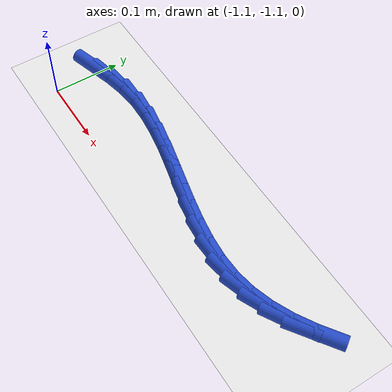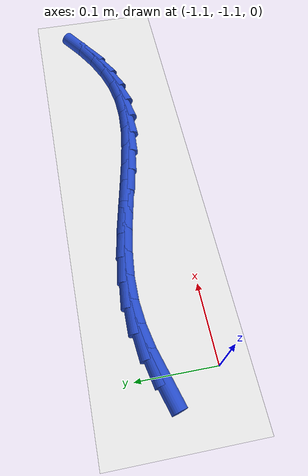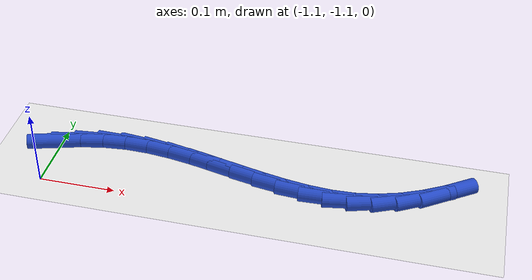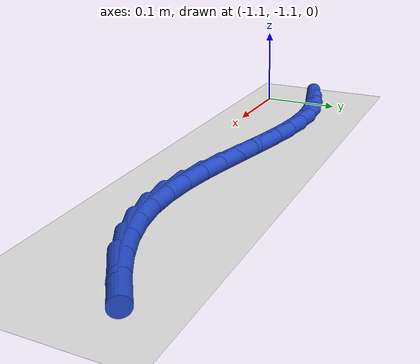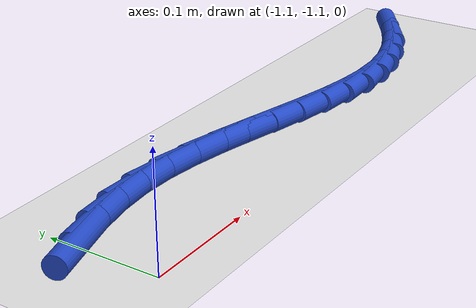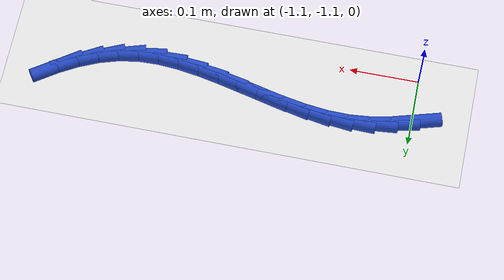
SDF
<sdf version="1.6">
 <world name="default">
  <model name="ground_plane">
   <static>1</static>
   <link name="link">
    <collision name="collision">
     <geometry><plane><normal>0 0 1</normal><size>100 100</size></plane></geometry>
     <surface><friction><ode><mu>100</mu><mu2>50</mu2></ode></friction></surface>
    </collision>
    <visual name="visual">
     <cast_shadows>0</cast_shadows>
     <geometry><plane><normal>0 0 1</normal><size>100 100</size></plane></geometry>
     <material>
      <script><uri>file://media/materials/scripts/gazebo.material</uri><name>Gazebo/WhiteGlow</name></script>
     </material>
    </visual>
   </link>
  </model>
  <model name="line">
   <link name="link_165">
    <pose>-1.1023682131840757 -1.031551570370461 0.01 0 1.57 0.2851211983102639</pose>
    <collision name="collision">
     <geometry><cylinder><radius>0.01</radius><length>0.08</length></cylinder></geometry>
    </collision>
    <visual name="visual">
     <material>
      <script><name>Gazebo/Blue</name><uri>file://media/materials/scripts/gazebo.material</uri></script>
     </material>
     <geometry><cylinder><radius>0.01</radius><length>0.08</length></cylinder></geometry>
    </visual>
   </link>
   <link name="link_166">
    <pose>-1.0724338450637536 -1.0227775912795036 0.01 0 1.57 0.20189719620483382</pose>
    <collision name="collision">
     <geometry><cylinder><radius>0.01</radius><length>0.08</length></cylinder></geometry>
    </collision>
    <visual name="visual">
     <material>
      <script><name>Gazebo/Blue</name><uri>file://media/materials/scripts/gazebo.material</uri></script>
     </material>
     <geometry><cylinder><radius>0.01</radius><length>0.08</length></cylinder></geometry>
    </visual>
   </link>
   <link name="link_167">
    <pose>-1.0421703543765288 -1.0165830798666606 0.01 0 1.57 0.09502463437327756</pose>
    <collision name="collision">
     <geometry><cylinder><radius>0.01</radius><length>0.08</length></cylinder></geometry>
    </collision>
    <visual name="visual">
     <material>
      <script><name>Gazebo/Blue</name><uri>file://media/materials/scripts/gazebo.material</uri></script>
     </material>
     <geometry><cylinder><radius>0.01</radius><length>0.08</length></cylinder></geometry>
    </visual>
   </link>
   <link name="link_168">
    <pose>-1.011461776324725 -1.0136561935406478 0.01 0 1.57 -0.020391022047481184</pose>
    <collision name="collision">
     <geometry><cylinder><radius>0.01</radius><length>0.08</length></cylinder></geometry>
    </collision>
    <visual name="visual">
     <material>
      <script><name>Gazebo/Blue</name><uri>file://media/materials/scripts/gazebo.material</uri></script>
     </material>
     <geometry><cylinder><radius>0.01</radius><length>0.08</length></cylinder></geometry>
    </visual>
   </link>
   <link name="link_169">
    <pose>-0.9802592462047243 -1.0142925332180668 0.01 0 1.57 -0.11223058271521404</pose>
    <collision name="collision">
     <geometry><cylinder><radius>0.01</radius><length>0.08</length></cylinder></geometry>
    </collision>
    <visual name="visual">
     <material>
      <script><name>Gazebo/Blue</name><uri>file://media/materials/scripts/gazebo.material</uri></script>
     </material>
     <geometry><cylinder><radius>0.01</radius><length>0.08</length></cylinder></geometry>
    </visual>
   </link>
   <link name="link_170">
    <pose>-0.9486737801247497 -1.0178523471676635 0.01 0 1.57 -0.17739528652523226</pose>
    <collision name="collision">
     <geometry><cylinder><radius>0.01</radius><length>0.08</length></cylinder></geometry>
    </collision>
    <visual name="visual">
     <material>
      <script><name>Gazebo/Blue</name><uri>file://media/materials/scripts/gazebo.material</uri></script>
     </material>
     <geometry><cylinder><radius>0.01</radius><length>0.08</length></cylinder></geometry>
    </visual>
   </link>
   <link name="link_171">
    <pose>-0.9168396967595736 -1.0235595563711455 0.01 0 1.57 -0.21803904960027637</pose>
    <collision name="collision">
     <geometry><cylinder><radius>0.01</radius><length>0.08</length></cylinder></geometry>
    </collision>
    <visual name="visual">
     <material>
      <script><name>Gazebo/Blue</name><uri>file://media/materials/scripts/gazebo.material</uri></script>
     </material>
     <geometry><cylinder><radius>0.01</radius><length>0.08</length></cylinder></geometry>
    </visual>
   </link>
   <link name="link_172">
    <pose>-0.8848913147839697 -1.0306380818102205 0.01 0 1.57 -0.23586940406162912</pose>
    <collision name="collision">
     <geometry><cylinder><radius>0.01</radius><length>0.08</length></cylinder></geometry>
    </collision>
    <visual name="visual">
     <material>
      <script><name>Gazebo/Blue</name><uri>file://media/materials/scripts/gazebo.material</uri></script>
     </material>
     <geometry><cylinder><radius>0.01</radius><length>0.08</length></cylinder></geometry>
    </visual>
   </link>
   <link name="link_173">
    <pose>-0.8529629528727102 -1.0383118444665957 0.01 0 1.57 -0.23158803058866578</pose>
    <collision name="collision">
     <geometry><cylinder><radius>0.01</radius><length>0.08</length></cylinder></geometry>
    </collision>
    <visual name="visual">
     <material>
      <script><name>Gazebo/Blue</name><uri>file://media/materials/scripts/gazebo.material</uri></script>
     </material>
     <geometry><cylinder><radius>0.01</radius><length>0.08</length></cylinder></geometry>
    </visual>
   </link>
   <link name="link_174">
    <pose>-0.8211889297005709 -1.0458047653219797 0.01 0 1.57 -0.20468143855820783</pose>
    <collision name="collision">
     <geometry><cylinder><radius>0.01</radius><length>0.08</length></cylinder></geometry>
    </collision>
    <visual name="visual">
     <material>
      <script><name>Gazebo/Blue</name><uri>file://media/materials/scripts/gazebo.material</uri></script>
     </material>
     <geometry><cylinder><radius>0.01</radius><length>0.08</length></cylinder></geometry>
    </visual>
   </link>
   <link name="link_175">
    <pose>-0.7897035639423245 -1.0523407653580799 0.01 0 1.57 -0.15340939179590107</pose>
    <collision name="collision">
     <geometry><cylinder><radius>0.01</radius><length>0.08</length></cylinder></geometry>
    </collision>
    <visual name="visual">
     <material>
      <script><name>Gazebo/Blue</name><uri>file://media/materials/scripts/gazebo.material</uri></script>
     </material>
     <geometry><cylinder><radius>0.01</radius><length>0.08</length></cylinder></geometry>
    </visual>
   </link>
   <link name="link_176">
    <pose>-0.758641174272744 -1.0571437655566038 0.01 0 1.57 -0.07505671172130111</pose>
    <collision name="collision">
     <geometry><cylinder><radius>0.01</radius><length>0.08</length></cylinder></geometry>
    </collision>
    <visual name="visual">
     <material>
      <script><name>Gazebo/Blue</name><uri>file://media/materials/scripts/gazebo.material</uri></script>
     </material>
     <geometry><cylinder><radius>0.01</radius><length>0.08</length></cylinder></geometry>
    </visual>
   </link>
   <link name="link_177">
    <pose>-0.7281360793666035 -1.059437686899259 0.01 0 1.57 0.03323568664096053</pose>
    <collision name="collision">
     <geometry><cylinder><radius>0.01</radius><length>0.08</length></cylinder></geometry>
    </collision>
    <visual name="visual">
     <material>
      <script><name>Gazebo/Blue</name><uri>file://media/materials/scripts/gazebo.material</uri></script>
     </material>
     <geometry><cylinder><radius>0.01</radius><length>0.08</length></cylinder></geometry>
    </visual>
   </link>
   <link name="link_178">
    <pose>-0.6983225978986753 -1.0584464503677535 0.01 0 1.57 0.16926390320820534</pose>
    <collision name="collision">
     <geometry><cylinder><radius>0.01</radius><length>0.08</length></cylinder></geometry>
    </collision>
    <visual name="visual">
     <material>
      <script><name>Gazebo/Blue</name><uri>file://media/materials/scripts/gazebo.material</uri></script>
     </material>
     <geometry><cylinder><radius>0.01</radius><length>0.08</length></cylinder></geometry>
    </visual>
   </link>
   <link name="link_179">
    <pose>-0.6693205360703567 -1.0534900232010485 0.01 0 1.57 0.30441044191675964</pose>
    <collision name="collision">
     <geometry><cylinder><radius>0.01</radius><length>0.08</length></cylinder></geometry>
    </collision>
    <visual name="visual">
     <material>
      <script><name>Gazebo/Blue</name><uri>file://media/materials/scripts/gazebo.material</uri></script>
     </material>
     <geometry><cylinder><radius>0.01</radius><length>0.08</length></cylinder></geometry>
    </visual>
   </link>
   <link name="link_180">
    <pose>-0.6411368257562711 -1.0446353959981938 0.01 0 1.57 0.42287846031522447</pose>
    <collision name="collision">
     <geometry><cylinder><radius>0.01</radius><length>0.08</length></cylinder></geometry>
    </collision>
    <visual name="visual">
     <material>
      <script><name>Gazebo/Blue</name><uri>file://media/materials/scripts/gazebo.material</uri></script>
     </material>
     <geometry><cylinder><radius>0.01</radius><length>0.08</length></cylinder></geometry>
    </visual>
   </link>
   <link name="link_181">
    <pose>-0.6137255230601594 -1.0322995010780538 0.01 0 1.57 0.5233613849963908</pose>
    <collision name="collision">
     <geometry><cylinder><radius>0.01</radius><length>0.08</length></cylinder></geometry>
    </collision>
    <visual name="visual">
     <material>
      <script><name>Gazebo/Blue</name><uri>file://media/materials/scripts/gazebo.material</uri></script>
     </material>
     <geometry><cylinder><radius>0.01</radius><length>0.08</length></cylinder></geometry>
    </visual>
   </link>
   <link name="link_182">
    <pose>-0.5870403815929095 -1.0169012727136413 0.01 0 1.57 0.6065320259151061</pose>
    <collision name="collision">
     <geometry><cylinder><radius>0.01</radius><length>0.08</length></cylinder></geometry>
    </collision>
    <visual name="visual">
     <material>
      <script><name>Gazebo/Blue</name><uri>file://media/materials/scripts/gazebo.material</uri></script>
     </material>
     <geometry><cylinder><radius>0.01</radius><length>0.08</length></cylinder></geometry>
    </visual>
   </link>
  </model>
 </world>
</sdf>
